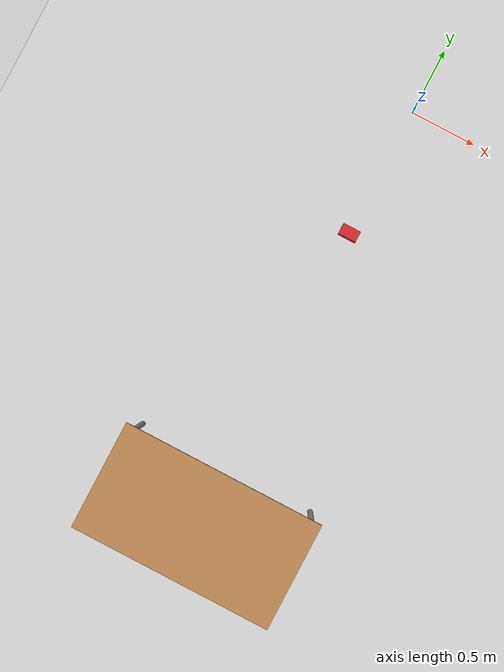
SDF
<?xml version="1.0" ?>
<sdf version="1.4">
  <world name="default">
    <include>
      <uri>model://ground_plane</uri>
    </include>
    <include>
      <uri>model://sun</uri>
    </include>

    <model name='unit_box'>
      <pose>0 -1 0.5 3.14159 1.57079 -1.57079</pose>
      <link name='link'>
        <inertial>
          <mass>0.111</mass>
          <inertia>
            <ixx>0.00022778</ixx>
            <ixy>0</ixy>
            <ixz>0</ixz>
            <iyy>0.00054853</iyy>
            <iyz>0</iyz>
            <izz>0.00065791</izz>
          </inertia>
          <pose>0 0 0 0 -0 0</pose>
        </inertial>
        <collision name='collision'>
          <geometry>
            <box>
              <size>0.23 0.135 0.08</size>
            </box>
          </geometry>
          <max_contacts>10</max_contacts>
          <surface>
            <contact>
              <ode/>
            </contact>
            <bounce/>
            <friction>
              <ode>
                <mu>5</mu>
                <mu2>5</mu2>
              </ode>
              <torsional>
                <ode/>
              </torsional>
            </friction>
          </surface>
        </collision>
        <visual name='visual'>
          <geometry>
            <box>
              <size>0.23 0.135 0.08</size>
            </box>
          </geometry>
          <material>
            <script>
              <name>Gazebo/Red</name>
              <uri>file://media/materials/scripts/gazebo.material</uri>
            </script>
          </material>
        </visual>
        <self_collide>0</self_collide>
        <enable_wind>0</enable_wind>
        <kinematic>0</kinematic>
      </link>
    </model>

    <model name='table'>
      <static>1</static>
      <link name='link'>
        <collision name='surface'>
          <pose>0 0 1 0 -0 0</pose>
          <geometry>
            <box>
              <size>1.5 0.8 0.03</size>
            </box>
          </geometry>
          <surface>
            <friction>
              <ode>
                <mu>5</mu>
                <mu2>5</mu2>
              </ode>
              <torsional>
                <ode/>
              </torsional>
            </friction>
            <contact>
              <ode/>
            </contact>
            <bounce/>
          </surface>
          <max_contacts>10</max_contacts>
        </collision>
        <visual name='visual1'>
          <pose>0 0 1 0 -0 0</pose>
          <geometry>
            <box>
              <size>1.5 0.8 0.03</size>
            </box>
          </geometry>
          <material>
            <script>
              <uri>file://media/materials/scripts/gazebo.material</uri>
              <name>Gazebo/Wood</name>
            </script>
          </material>
        </visual>
        <collision name='front_left_leg'>
          <pose>0.68 0.38 0.5 0 -0 0</pose>
          <geometry>
            <cylinder>
              <radius>0.02</radius>
              <length>1</length>
            </cylinder>
          </geometry>
          <max_contacts>10</max_contacts>
          <surface>
            <contact>
              <ode/>
            </contact>
            <bounce/>
            <friction>
              <torsional>
                <ode/>
              </torsional>
              <ode/>
            </friction>
          </surface>
        </collision>
        <visual name='front_left_leg'>
          <pose>0.68 0.38 0.5 0 -0 0</pose>
          <geometry>
            <cylinder>
              <radius>0.02</radius>
              <length>1</length>
            </cylinder>
          </geometry>
          <material>
            <script>
              <uri>file://media/materials/scripts/gazebo.material</uri>
              <name>Gazebo/Grey</name>
            </script>
          </material>
        </visual>
        <collision name='front_right_leg'>
          <pose>0.68 -0.38 0.5 0 -0 0</pose>
          <geometry>
            <cylinder>
              <radius>0.02</radius>
              <length>1</length>
            </cylinder>
          </geometry>
          <max_contacts>10</max_contacts>
          <surface>
            <contact>
              <ode/>
            </contact>
            <bounce/>
            <friction>
              <torsional>
                <ode/>
              </torsional>
              <ode/>
            </friction>
          </surface>
        </collision>
        <visual name='front_right_leg'>
          <pose>0.68 -0.38 0.5 0 -0 0</pose>
          <geometry>
            <cylinder>
              <radius>0.02</radius>
              <length>1</length>
            </cylinder>
          </geometry>
          <material>
            <script>
              <uri>file://media/materials/scripts/gazebo.material</uri>
              <name>Gazebo/Grey</name>
            </script>
          </material>
        </visual>
        <collision name='back_right_leg'>
          <pose>-0.68 -0.38 0.5 0 -0 0</pose>
          <geometry>
            <cylinder>
              <radius>0.02</radius>
              <length>1</length>
            </cylinder>
          </geometry>
          <max_contacts>10</max_contacts>
          <surface>
            <contact>
              <ode/>
            </contact>
            <bounce/>
            <friction>
              <torsional>
                <ode/>
              </torsional>
              <ode/>
            </friction>
          </surface>
        </collision>
        <visual name='back_right_leg'>
          <pose>-0.68 -0.38 0.5 0 -0 0</pose>
          <geometry>
            <cylinder>
              <radius>0.02</radius>
              <length>1</length>
            </cylinder>
          </geometry>
          <material>
            <script>
              <uri>file://media/materials/scripts/gazebo.material</uri>
              <name>Gazebo/Grey</name>
            </script>
          </material>
        </visual>
        <collision name='back_left_leg'>
          <pose>-0.68 0.38 0.5 0 -0 0</pose>
          <geometry>
            <cylinder>
              <radius>0.02</radius>
              <length>1</length>
            </cylinder>
          </geometry>
          <max_contacts>10</max_contacts>
          <surface>
            <contact>
              <ode/>
            </contact>
            <bounce/>
            <friction>
              <torsional>
                <ode/>
              </torsional>
              <ode/>
            </friction>
          </surface>
        </collision>
        <visual name='back_left_leg'>
          <pose>-0.68 0.38 0.5 0 -0 0</pose>
          <geometry>
            <cylinder>
              <radius>0.02</radius>
              <length>1</length>
            </cylinder>
          </geometry>
          <material>
            <script>
              <uri>file://media/materials/scripts/gazebo.material</uri>
              <name>Gazebo/Grey</name>
            </script>
          </material>
        </visual>
        <self_collide>0</self_collide>
        <enable_wind>0</enable_wind>
        <kinematic>0</kinematic>
      </link>
      <pose>0.008247 -3.26146 0 0 -0 0</pose>
    </model>

    <!-- Only one ROS interface plugin is required per world, as any other plugin can connect a Gazebo
         topic to a ROS topic (or vise versa). -->
    <plugin name="ros_interface_plugin" filename="librotors_gazebo_ros_interface_plugin.so"/>

    <spherical_coordinates>
      <surface_model>EARTH_WGS84</surface_model>
      <latitude_deg>47.3667</latitude_deg>
      <longitude_deg>8.5500</longitude_deg>
      <elevation>500.0</elevation>
      <heading_deg>0</heading_deg>
    </spherical_coordinates>
    <physics type='ode'>
      <ode>
        <constraints>
          <cfm>0</cfm>
          <erp>0.2</erp>
        </constraints>
      </ode>
      <max_step_size>0.001</max_step_size>
      <real_time_factor>1</real_time_factor>
      <real_time_update_rate>1000</real_time_update_rate>
      <gravity>0 0 -9.8</gravity>
    </physics>
  </world>
</sdf>
